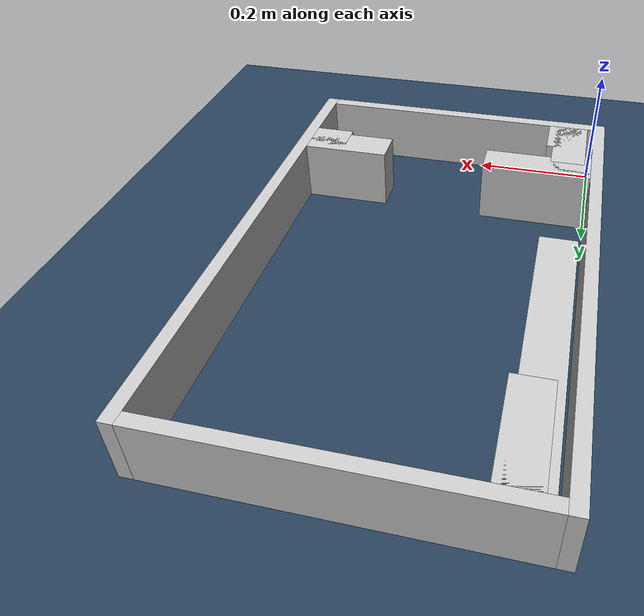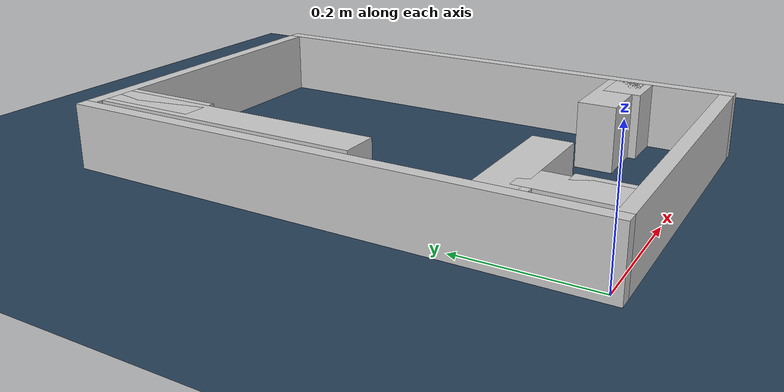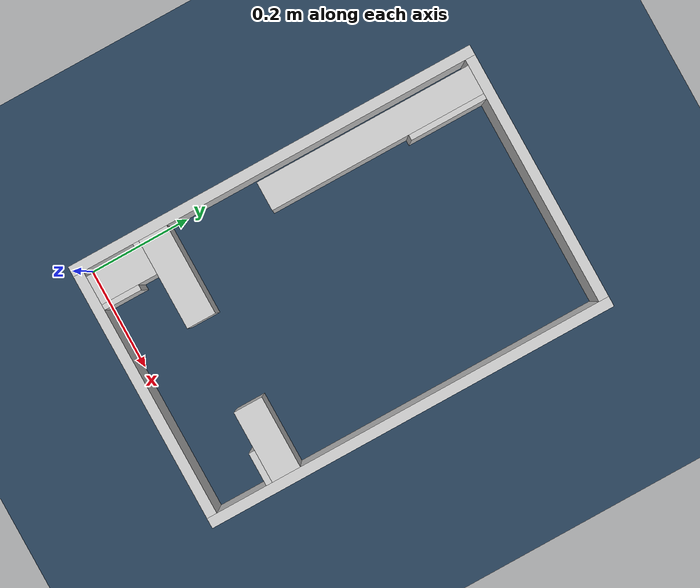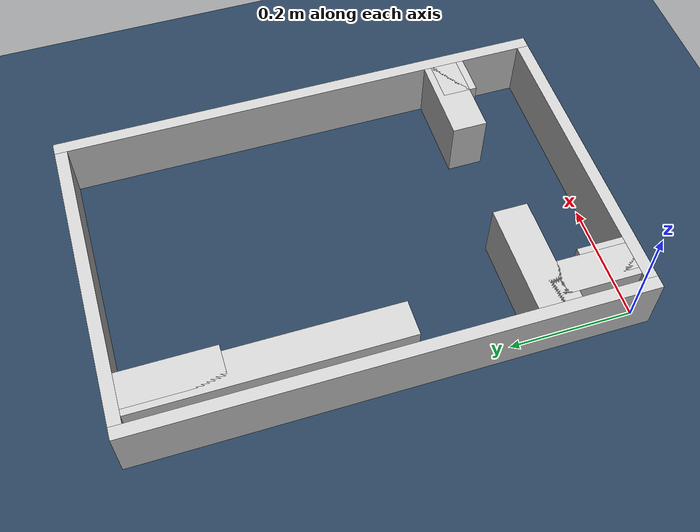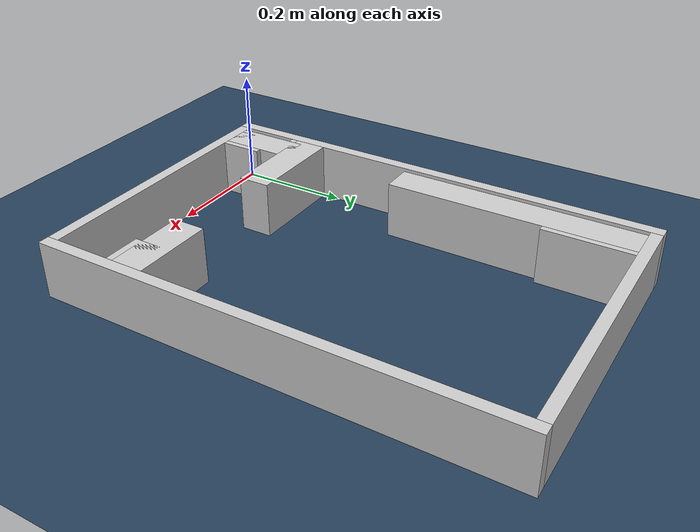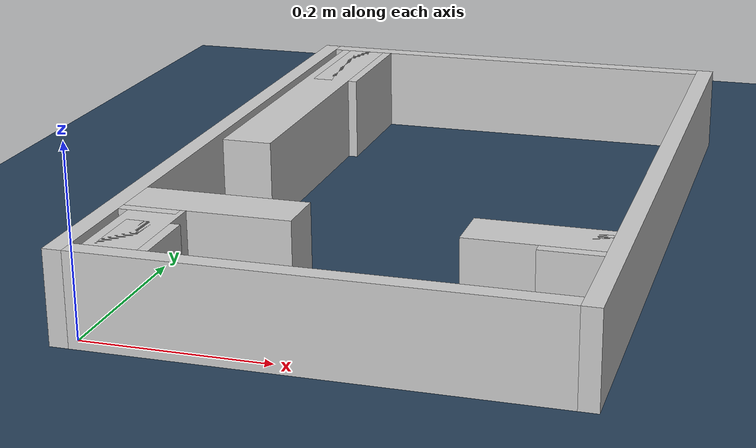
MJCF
<?xml version="1.0" ?>
<mujoco model="generated_real_template">
  <compiler angle="degree"/>
  <option timestep="0.002" integrator="implicitfast" iterations="100" cone="elliptic"/>
  <default>
    <geom density="1"/>
  </default>
  <asset>
    <texture builtin="gradient" height="3072" rgb1="0.3 0.5 0.7" rgb2="0 0 0" type="skybox" width="512"/>
    <texture builtin="checker" height="300" mark="edge" markrgb="0.8 0.8 0.8" name="groundplane" rgb1="0.2 0.3 0.4" rgb2="0.1 0.2 0.3" type="2d" width="300"/>
    <material name="groundplane" reflectance="0.2" texrepeat="5 5" texture="groundplane" texuniform="true"/>
  </asset>
  <worldbody>
    <light dir="0 0 -1" directional="true" pos="0 0 1.5"/>
    <geom name="floor" type="plane" condim="4" friction="0.5 0.005 0.001" material="groundplane" size="0 0 0.05"/>
    <body name="walls">
      <geom name="wall_boundary_left" type="box" condim="4" friction="1.0 0.005 0.0001" rgba="0.8 0.8 0.8 1" pos="-0.010000 0.387500 0.050000" euler="0 0 0.000000" size="0.010000 0.407500 0.050000"/>
      <geom name="wall_boundary_right" type="box" condim="4" friction="1.0 0.005 0.0001" rgba="0.8 0.8 0.8 1" pos="0.500000 0.387500 0.050000" euler="0 0 0.000000" size="0.010000 0.407500 0.050000"/>
      <geom name="wall_boundary_bottom" type="box" condim="4" friction="1.0 0.005 0.0001" rgba="0.8 0.8 0.8 1" pos="0.245000 -0.010000 0.050000" euler="0 0 0.000000" size="0.245000 0.010000 0.050000"/>
      <geom name="wall_boundary_top" type="box" condim="4" friction="1.0 0.005 0.0001" rgba="0.8 0.8 0.8 1" pos="0.245000 0.785000 0.050000" euler="0 0 0.000000" size="0.245000 0.010000 0.050000"/>
      <geom name="wall_inner_1_1" type="box" condim="4" friction="1.0 0.005 0.0001" rgba="0.8 0.8 0.8 1" pos="0.089218 0.140982 0.050000" euler="0 0 0.000000" size="0.089218 0.028500 0.050000"/>
      <geom name="wall_inner_1_2" type="box" condim="4" friction="1.0 0.005 0.0001" rgba="0.8 0.8 0.8 1" pos="0.419117 0.140982 0.050000" euler="0 0 0.000000" size="0.070883 0.028500 0.050000"/>
      <geom name="wall_inner_2_1" type="box" condim="4" friction="1.0 0.005 0.0001" rgba="0.8 0.8 0.8 1" pos="0.039296 0.063635 0.050000" euler="0 0 90.000000" size="0.063635 0.028500 0.050000"/>
      <geom name="wall_inner_2_2" type="box" condim="4" friction="1.0 0.005 0.0001" rgba="0.8 0.8 0.8 1" pos="0.039296 0.560368 0.050000" euler="0 0 90.000000" size="0.214632 0.028500 0.050000"/>
      <geom name="wall_inner_3_1" type="box" condim="4" friction="1.0 0.005 0.0001" rgba="0.8 0.8 0.8 1" pos="0.031043 0.128950 0.050000" euler="0 0 0.000000" size="0.031043 0.028500 0.050000"/>
      <geom name="wall_inner_3_2" type="box" condim="4" friction="1.0 0.005 0.0001" rgba="0.8 0.8 0.8 1" pos="0.457491 0.128950 0.050000" euler="0 0 0.000000" size="0.032509 0.028500 0.050000"/>
      <geom name="wall_inner_4_1" type="box" condim="4" friction="1.0 0.005 0.0001" rgba="0.8 0.8 0.8 1" pos="0.050075 0.037226 0.050000" euler="0 0 90.000000" size="0.037226 0.028500 0.050000"/>
      <geom name="wall_inner_4_2" type="box" condim="4" friction="1.0 0.005 0.0001" rgba="0.8 0.8 0.8 1" pos="0.050075 0.698805 0.050000" euler="0 0 90.000000" size="0.076195 0.028500 0.050000"/>
    </body>
  </worldbody>
</mujoco>
